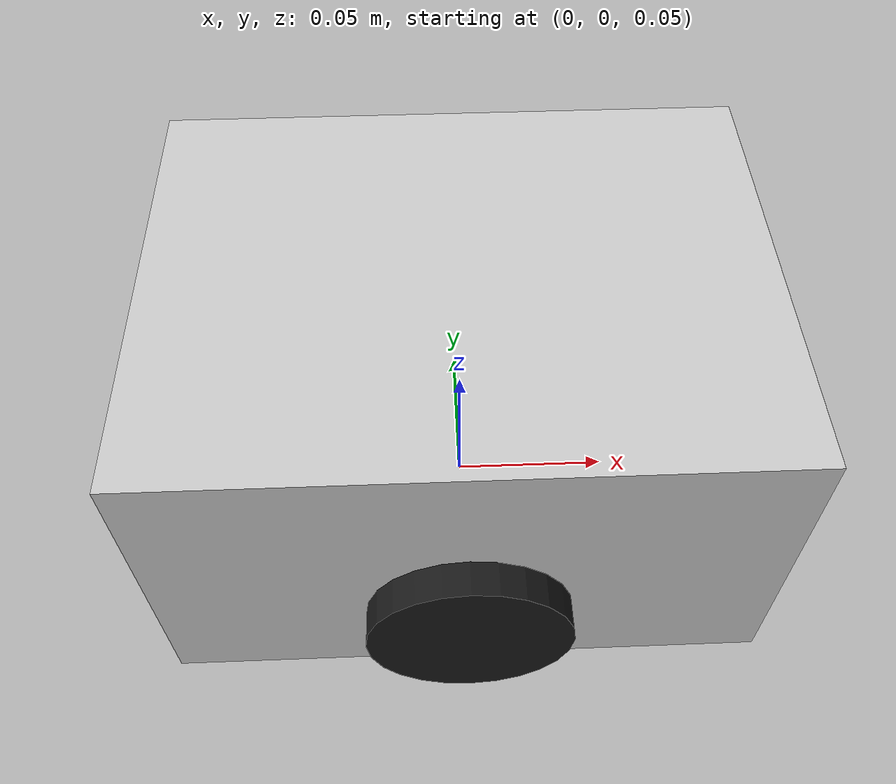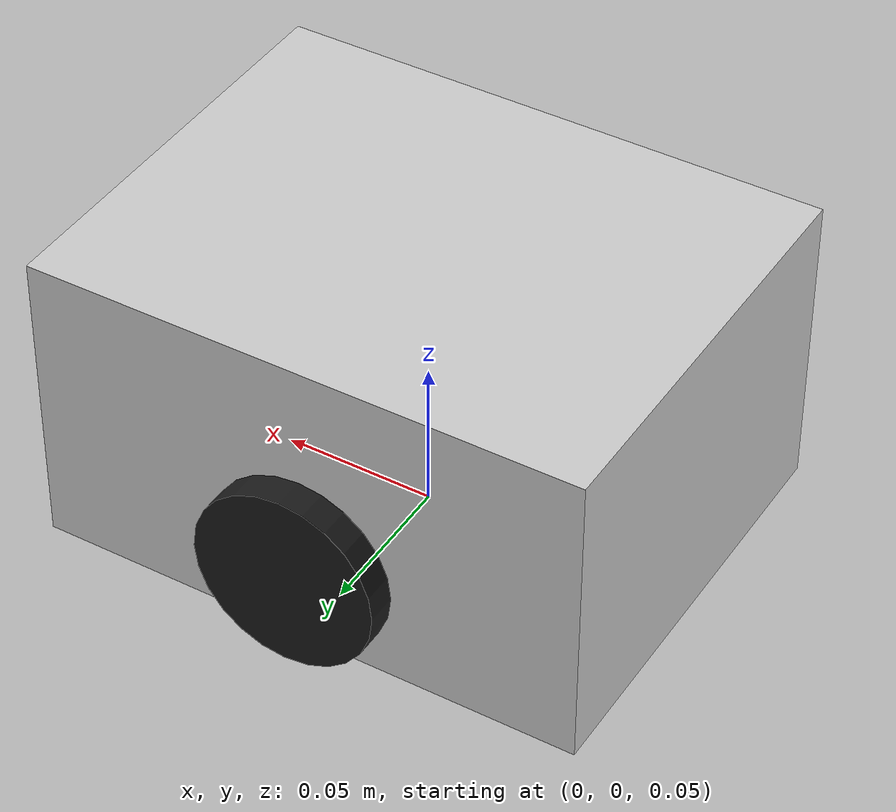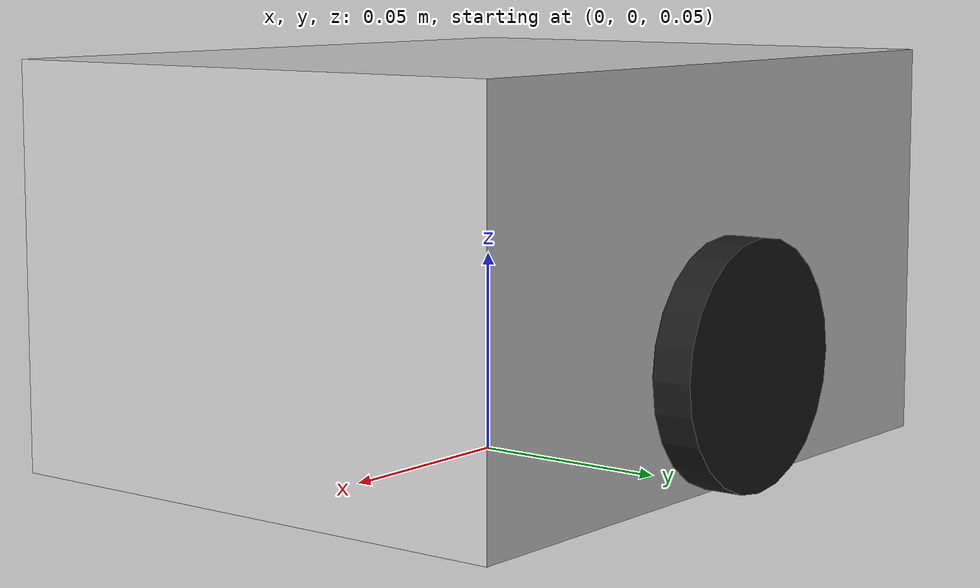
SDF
<?xml version="1.0"?>
<sdf version="1.9">
  <model name="robot">

    <pose>0 0 0.05 0 0 0</pose>

    <!-- ================= BASE ================= -->
    <link name="base_link">
      <pose>0 0 0.05 0 0 0</pose>

      <inertial>
        <mass>1.5</mass>
        <inertia>
          <ixx>0.02</ixx>
          <iyy>0.02</iyy>
          <izz>0.04</izz>
        </inertia>
      </inertial>

      <collision name="base_collision">
        <geometry>
          <box>
            <size>0.18 0.14 0.10</size>
          </box>
        </geometry>
      </collision>

      <visual name="base_visual">
        <geometry>
          <box>
            <size>0.18 0.14 0.10</size>
          </box>
        </geometry>
        <material>
          <ambient>0.8 0.8 0.8 1</ambient>
          <diffuse>0.8 0.8 0.8 1</diffuse>
        </material>
      </visual>

      <!-- IMU -->
      <sensor name="imu" type="imu">
        <always_on>true</always_on>
        <update_rate>200</update_rate>
        <topic>/model/robot/imu</topic>
      </sensor>

      <!-- GPS -->
      <sensor name="gps" type="gps">
        <always_on>true</always_on>
        <update_rate>5</update_rate>
        <topic>/model/robot/gps</topic>
      </sensor>

      <!-- 2D LIDAR -->
      <sensor name="lidar" type="gpu_lidar">
        <pose>0.09 0 0.12 0 0 0</pose>
        <update_rate>10</update_rate>
        <topic>/scan</topic>

        <lidar>
          <scan>
            <horizontal>
              <samples>720</samples>
              <min_angle>-3.14159</min_angle>
              <max_angle>3.14159</max_angle>
            </horizontal>
          </scan>
          <range>
            <min>0.05</min>
            <max>6.0</max>
          </range>
        </lidar>
      </sensor>
    </link>

    <!-- ================= LEFT WHEEL ================= -->
    <link name="left_wheel">
      <!-- IMPORTANT: roll = 1.5708 to align cylinder axis with Y -->
      <pose>0 0.07 0.03 1.5708 0 0</pose>

      <inertial>
        <mass>0.2</mass>
        <inertia>
          <ixx>0.001</ixx>
          <iyy>0.001</iyy>
          <izz>0.001</izz>
        </inertia>
      </inertial>

      <collision name="collision">
        <geometry>
          <cylinder>
            <radius>0.03</radius>
            <length>0.02</length>
          </cylinder>
        </geometry>
      </collision>

      <visual name="visual">
        <geometry>
          <cylinder>
            <radius>0.03</radius>
            <length>0.02</length>
          </cylinder>
        </geometry>
        <material>
          <ambient>0.1 0.1 0.1 1</ambient>
        </material>
      </visual>
    </link>

    <!-- ================= RIGHT WHEEL ================= -->
    <link name="right_wheel">
      <pose>0 -0.07 0.03 1.5708 0 0</pose>

      <inertial>
        <mass>0.2</mass>
        <inertia>
          <ixx>0.001</ixx>
          <iyy>0.001</iyy>
          <izz>0.001</izz>
        </inertia>
      </inertial>

      <collision name="collision">
        <geometry>
          <cylinder>
            <radius>0.03</radius>
            <length>0.02</length>
          </cylinder>
        </geometry>
      </collision>

      <visual name="visual">
        <geometry>
          <cylinder>
            <radius>0.03</radius>
            <length>0.02</length>
          </cylinder>
        </geometry>
        <material>
          <ambient>0.1 0.1 0.1 1</ambient>
        </material>
      </visual>
    </link>

    <!-- ================= JOINTS ================= -->
    <joint name="left_wheel_joint" type="revolute">
      <parent>base_link</parent>
      <child>left_wheel</child>
      <axis>
        <xyz>0 1 0</xyz>
      </axis>
    </joint>

    <joint name="right_wheel_joint" type="revolute">
      <parent>base_link</parent>
      <child>right_wheel</child>
      <axis>
        <xyz>0 1 0</xyz>
      </axis>
    </joint>

    <!-- ================= DIFF DRIVE ================= -->
    <plugin
      filename="gz-sim-diff-drive-system"
      name="gz::sim::systems::DiffDrive">

      <left_joint>left_wheel_joint</left_joint>
      <right_joint>right_wheel_joint</right_joint>

      <wheel_separation>0.14</wheel_separation>
      <wheel_radius>0.03</wheel_radius>

      <cmd_vel_topic>/model/robot/cmd_vel</cmd_vel_topic>
      <odom_topic>/model/robot/odom</odom_topic>
      <odom_publish_frequency>50</odom_publish_frequency>

      <publish_tf>false</publish_tf>
    </plugin>

  </model>
</sdf>
